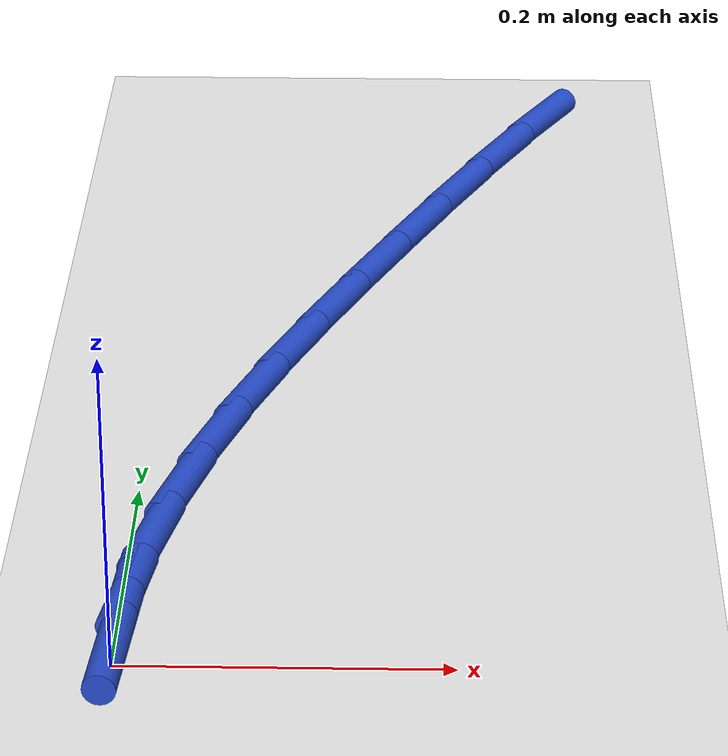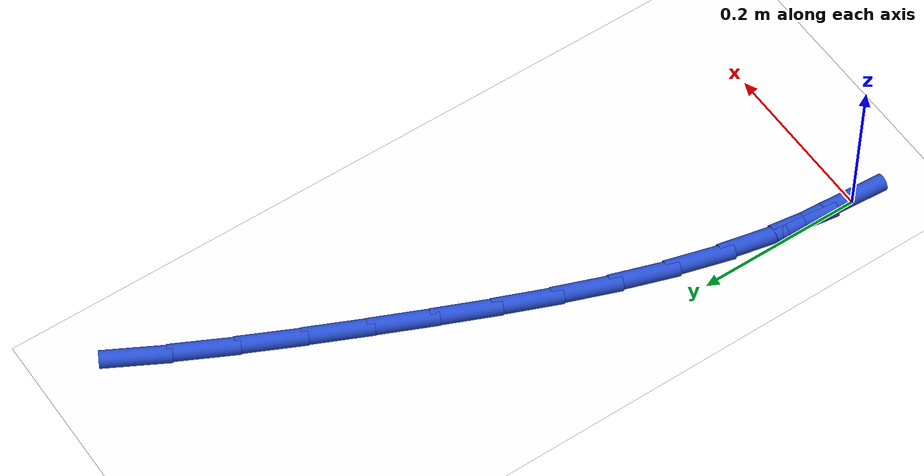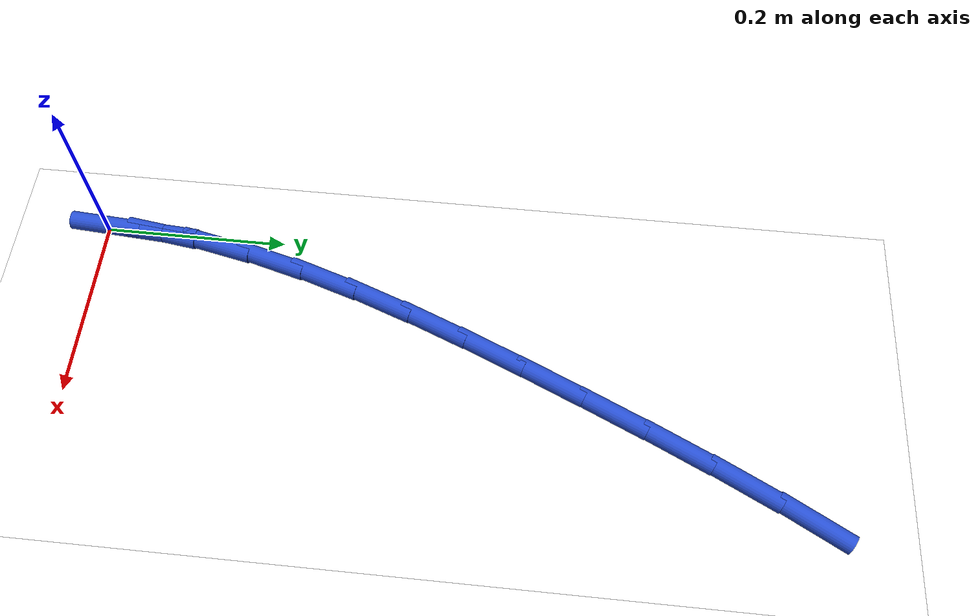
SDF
<sdf version="1.6">
 <world name="default">
  <model name="ground_plane">
   <static>1</static>
   <link name="link">
    <collision name="collision">
     <geometry><plane><normal>0 0 1</normal><size>100 100</size></plane></geometry>
     <surface><friction><ode><mu>100</mu><mu2>50</mu2></ode></friction></surface>
    </collision>
    <visual name="visual">
     <cast_shadows>0</cast_shadows>
     <geometry><plane><normal>0 0 1</normal><size>100 100</size></plane></geometry>
     <material>
      <script><uri>file://media/materials/scripts/gazebo.material</uri><name>Gazebo/WhiteGlow</name></script>
     </material>
    </visual>
   </link>
  </model>
  <model name="line">
   <link name="link_1">
    <pose>0.004473480318559881 0.06448047588835713 0.01 0 1.57 1.4260779624177573</pose>
    <collision name="collision">
     <geometry><cylinder><radius>0.01</radius><length>0.08</length></cylinder></geometry>
    </collision>
    <visual name="visual">
     <material>
      <script><name>Gazebo/Blue</name><uri>file://media/materials/scripts/gazebo.material</uri></script>
     </material>
     <geometry><cylinder><radius>0.01</radius><length>0.08</length></cylinder></geometry>
    </visual>
   </link>
   <link name="link_2">
    <pose>0.013715260060121871 0.12789448286042074 0.01 0 1.57 1.3581584909314919</pose>
    <collision name="collision">
     <geometry><cylinder><radius>0.01</radius><length>0.08</length></cylinder></geometry>
    </collision>
    <visual name="visual">
     <material>
      <script><name>Gazebo/Blue</name><uri>file://media/materials/scripts/gazebo.material</uri></script>
     </material>
     <geometry><cylinder><radius>0.01</radius><length>0.08</length></cylinder></geometry>
    </visual>
   </link>
   <link name="link_3">
    <pose>0.027246817237403693 0.19056911118435868 0.01 0 1.57 1.2991381118221503</pose>
    <collision name="collision">
     <geometry><cylinder><radius>0.01</radius><length>0.08</length></cylinder></geometry>
    </collision>
    <visual name="visual">
     <material>
      <script><name>Gazebo/Blue</name><uri>file://media/materials/scripts/gazebo.material</uri></script>
     </material>
     <geometry><cylinder><radius>0.01</radius><length>0.08</length></cylinder></geometry>
    </visual>
   </link>
   <link name="link_4">
    <pose>0.04458962986312308 0.2528314511283386 0.01 0 1.57 1.2497721164201194</pose>
    <collision name="collision">
     <geometry><cylinder><radius>0.01</radius><length>0.08</length></cylinder></geometry>
    </collision>
    <visual name="visual">
     <material>
      <script><name>Gazebo/Blue</name><uri>file://media/materials/scripts/gazebo.material</uri></script>
     </material>
     <geometry><cylinder><radius>0.01</radius><length>0.08</length></cylinder></geometry>
    </visual>
   </link>
   <link name="link_5">
    <pose>0.06526517594999781 0.3150085929605285 0.01 0 1.57 1.2103045018534027</pose>
    <collision name="collision">
     <geometry><cylinder><radius>0.01</radius><length>0.08</length></cylinder></geometry>
    </collision>
    <visual name="visual">
     <material>
      <script><name>Gazebo/Blue</name><uri>file://media/materials/scripts/gazebo.material</uri></script>
     </material>
     <geometry><cylinder><radius>0.01</radius><length>0.08</length></cylinder></geometry>
    </visual>
   </link>
   <link name="link_6">
    <pose>0.08879493351074556 0.3774276269490958 0.01 0 1.57 1.1806073812287163</pose>
    <collision name="collision">
     <geometry><cylinder><radius>0.01</radius><length>0.08</length></cylinder></geometry>
    </collision>
    <visual name="visual">
     <material>
      <script><name>Gazebo/Blue</name><uri>file://media/materials/scripts/gazebo.material</uri></script>
     </material>
     <geometry><cylinder><radius>0.01</radius><length>0.08</length></cylinder></geometry>
    </visual>
   </link>
   <link name="link_7">
    <pose>0.11470038055808413 0.4404156433622084 0.01 0 1.57 1.1603145982511427</pose>
    <collision name="collision">
     <geometry><cylinder><radius>0.01</radius><length>0.08</length></cylinder></geometry>
    </collision>
    <visual name="visual">
     <material>
      <script><name>Gazebo/Blue</name><uri>file://media/materials/scripts/gazebo.material</uri></script>
     </material>
     <geometry><cylinder><radius>0.01</radius><length>0.08</length></cylinder></geometry>
    </visual>
   </link>
   <link name="link_8">
    <pose>0.14250299510473124 0.504299732468034 0.01 0 1.57 1.1487133766776452</pose>
    <collision name="collision">
     <geometry><cylinder><radius>0.01</radius><length>0.08</length></cylinder></geometry>
    </collision>
    <visual name="visual">
     <material>
      <script><name>Gazebo/Blue</name><uri>file://media/materials/scripts/gazebo.material</uri></script>
     </material>
     <geometry><cylinder><radius>0.01</radius><length>0.08</length></cylinder></geometry>
    </visual>
   </link>
   <link name="link_9">
    <pose>0.17173326736448022 0.569389946675125 0.01 0 1.57 1.138721351559016</pose>
    <collision name="collision">
     <geometry><cylinder><radius>0.01</radius><length>0.08</length></cylinder></geometry>
    </collision>
    <visual name="visual">
     <material>
      <script><name>Gazebo/Blue</name><uri>file://media/materials/scripts/gazebo.material</uri></script>
     </material>
     <geometry><cylinder><radius>0.01</radius><length>0.08</length></cylinder></geometry>
    </visual>
   </link>
   <link name="link_10">
    <pose>0.2022027590772818 0.6354649635187564 0.01 0 1.57 1.122464173212853</pose>
    <collision name="collision">
     <geometry><cylinder><radius>0.01</radius><length>0.08</length></cylinder></geometry>
    </collision>
    <visual name="visual">
     <material>
      <script><name>Gazebo/Blue</name><uri>file://media/materials/scripts/gazebo.material</uri></script>
     </material>
     <geometry><cylinder><radius>0.01</radius><length>0.08</length></cylinder></geometry>
    </visual>
   </link>
   <link name="link_11">
    <pose>0.23405247665222656 0.7016806346588481 0.01 0 1.57 1.0992220409291802</pose>
    <collision name="collision">
     <geometry><cylinder><radius>0.01</radius><length>0.08</length></cylinder></geometry>
    </collision>
    <visual name="visual">
     <material>
      <script><name>Gazebo/Blue</name><uri>file://media/materials/scripts/gazebo.material</uri></script>
     </material>
     <geometry><cylinder><radius>0.01</radius><length>0.08</length></cylinder></geometry>
    </visual>
   </link>
   <link name="link_12">
    <pose>0.2674421898706216 0.7671573389891178 0.01 0 1.57 1.068343765532139</pose>
    <collision name="collision">
     <geometry><cylinder><radius>0.01</radius><length>0.08</length></cylinder></geometry>
    </collision>
    <visual name="visual">
     <material>
      <script><name>Gazebo/Blue</name><uri>file://media/materials/scripts/gazebo.material</uri></script>
     </material>
     <geometry><cylinder><radius>0.01</radius><length>0.08</length></cylinder></geometry>
    </visual>
   </link>
   <link name="link_110">
    <pose>-6.938893903907228e-18 2.7755575615628914e-16 0.01 0 1.57 1.4997023010278459</pose>
    <collision name="collision">
     <geometry><cylinder><radius>0.01</radius><length>0.08</length></cylinder></geometry>
    </collision>
    <visual name="visual">
     <material>
      <script><name>Gazebo/Blue</name><uri>file://media/materials/scripts/gazebo.material</uri></script>
     </material>
     <geometry><cylinder><radius>0.01</radius><length>0.08</length></cylinder></geometry>
    </visual>
   </link>
   <link name="link_111">
    <pose>0.004580323142303659 0.06431769228621766 0.01 0 1.57 1.499702301027846</pose>
    <collision name="collision">
     <geometry><cylinder><radius>0.01</radius><length>0.08</length></cylinder></geometry>
    </collision>
    <visual name="visual">
     <material>
      <script><name>Gazebo/Blue</name><uri>file://media/materials/scripts/gazebo.material</uri></script>
     </material>
     <geometry><cylinder><radius>0.01</radius><length>0.08</length></cylinder></geometry>
    </visual>
   </link>
  </model>
 </world>
</sdf>
